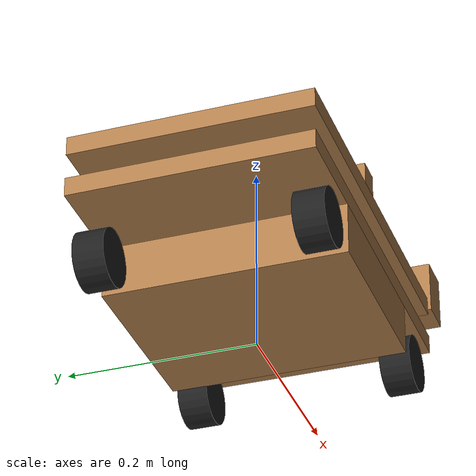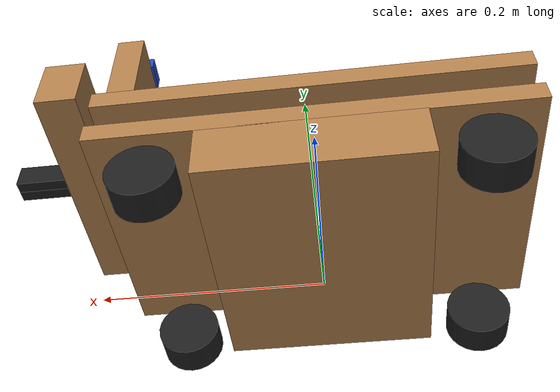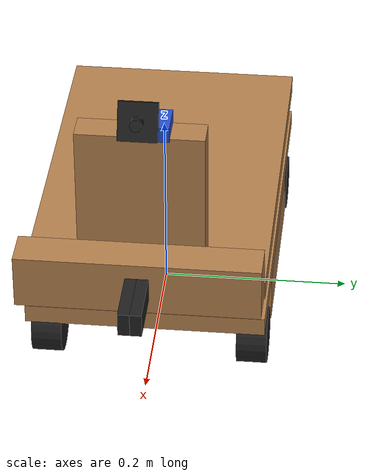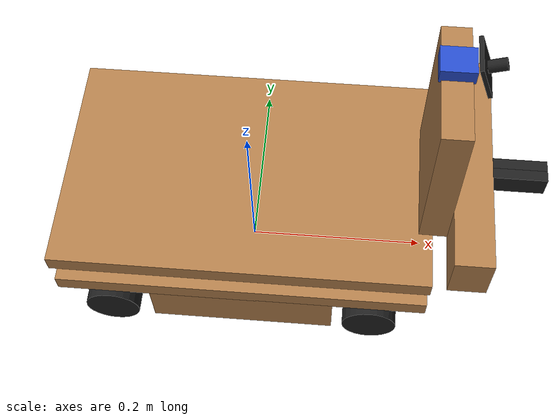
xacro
<?xml version="1.0"?>

<robot name="mobrob" xmlns:xacro="http://www.ros.org/wiki/xacro">

  <xacro:include filename="$(find myrobot_model)/urdf/mobrob_gpu.gazebo" />
  <xacro:include filename="$(find myrobot_model)/urdf/materials.urdf.xacro" />

  <link name="base_footprint"></link>

  <joint name="base_link_joint" type="fixed">
    <origin xyz="0 0 0.05" rpy="0 0 0" />
    <parent link="base_footprint"/>
    <child link="base_link" />
  </joint>

  <link name="base_link">
    <visual>
      <geometry>
        <box size="0.2 0.25 0.055"/>
      </geometry>
    </visual>
    <collision>
      <geometry>
        <box size="0.2 0.25 0.055"/>
      </geometry>
    </collision>
    <inertial>
      <mass value="1.1"/>
      <inertia
        ixx="0.006006" ixy="0.0" ixz="0.0"
        iyy="0.003944" iyz="0.0"
        izz="0.009396"/>
    </inertial>
  </link>

  <link name="upperbase_link">
    <visual>
      <origin xyz="0 0 0.0235" rpy="0 0 0" />
      <geometry>
        <box size="0.4 0.25 0.02"/>
      </geometry>
    </visual>
    <visual>
      <origin xyz="0 0 -0.0235" rpy="0 0 0" />
      <geometry>
        <box size="0.4 0.25 0.02"/>
      </geometry>
    </visual>
    <collision>
      <geometry>
        <box size="0.4 0.25 0.055"/>
      </geometry>
    </collision>
    <inertial>
      <mass value="2.6"/>
      <inertia
        ixx="0.01449" ixy="0.0" ixz="0.0"
        iyy="0.03558" iyz="0.0"
        izz="0.04821"/>
    </inertial>
  </link>
  <joint name="base_to_upperbase" type="fixed">
    <parent link="base_link"/>
    <child link="upperbase_link"/>
    <origin xyz="0 0 0.06"/>
  </joint>

  <link name="laser">
    <visual>
      <origin rpy="0 0 0" xyz="0 0 0"/>
      <geometry>
        <cylinder length="0.03" radius="0.04"/>
      </geometry>
      <material name="black"/>
    </visual>
    <collision>
      <origin rpy="0 0 0" xyz="0 0 0"/>
      <geometry>
        <cylinder length="0.03" radius="0.04"/>
      </geometry>
    </collision>
    <inertial>
      <mass value="0.2"/>
      <inertia
        ixx="0.0001021" ixy="0.0" ixz="0.0"
        iyy="0.0001021" iyz="0.0"
        izz="0.0001719"/>
    </inertial>
  </link>
  <joint name="base_to_laser" type="fixed">
    <parent link="base_link"/>
    <child link="laser"/>
    <origin rpy="0 0 ${-pi}" xyz="0.055 0 0.06"/>
  </joint>

  <link name="right_front_wheel">
    <visual>
      <origin rpy="1.57075 0 0" xyz="0 0 0"/>
      <geometry>
        <cylinder length="0.032" radius="0.03"/>
      </geometry>
      <material name="black"/>
    </visual>
    <collision>
      <origin rpy="1.57075 0 0" xyz="0 0 0"/>
      <geometry>
        <cylinder length="0.032" radius="0.03"/>
      </geometry>
    </collision>
    <inertial>
      <origin rpy="1.57075 0 0" xyz="0 0 0"/>
      <mass value="0.08"/>
      <inertia
        ixx="0.00002611" ixy="0.0" ixz="0.0"
        iyy="0.00003786" iyz="0.0"
        izz="0.00002611"/>
    </inertial>
  </link>
  <joint name="right_front_wheel_joint" type="continuous">
    <parent link="base_link"/>
    <child link="right_front_wheel"/>
    <origin rpy="0 0 0" xyz="0.142 0.109 -0.0175"/>
    <axis xyz="0 1 0"/>
  </joint>

  <link name="right_back_wheel">
    <visual>
      <origin rpy="1.57075 0 0" xyz="0 0 0"/>
      <geometry>
        <cylinder length="0.032" radius="0.03"/>
      </geometry>
      <material name="black"/>
    </visual>
    <collision>
      <origin rpy="1.57075 0 0" xyz="0 0 0"/>
      <geometry>
        <cylinder length="0.032" radius="0.03"/>
      </geometry>
    </collision>
    <inertial>
      <origin rpy="1.57075 0 0" xyz="0 0 0"/>
      <mass value="0.08"/>
      <inertia
        ixx="0.00002611" ixy="0.0" ixz="0.0"
        iyy="0.00003786" iyz="0.0"
        izz="0.00002611"/>
    </inertial>
  </link>
  <joint name="right_back_wheel_joint" type="continuous">
    <parent link="base_link"/>
    <child link="right_back_wheel"/>
    <origin rpy="0 0 0" xyz="-0.147 0.109 -0.0175"/>
    <axis xyz="0 1 0"/>
  </joint>

  <link name="left_front_wheel">
    <visual>
      <origin rpy="1.57075 0 0" xyz="0 0 0"/>
      <geometry>
        <cylinder length="0.032" radius="0.03"/>
      </geometry>
      <material name="black"/>
    </visual>
    <collision>
      <origin rpy="1.57075 0 0" xyz="0 0 0"/>
      <geometry>
        <cylinder length="0.032" radius="0.03"/>
      </geometry>
    </collision>
    <inertial>
      <origin rpy="1.57075 0 0" xyz="0 0 0"/>
      <mass value="0.08"/>
      <inertia
        ixx="0.00002611" ixy="0.0" ixz="0.0"
        iyy="0.00003786" iyz="0.0"
        izz="0.00002611"/>
    </inertial>
  </link>
  <joint name="left_front_wheel_joint" type="continuous">
    <parent link="base_link"/>
    <child link="left_front_wheel"/>
    <origin rpy="0 0 0" xyz="0.142 -0.109 -0.0175"/>
    <axis xyz="0 1 0"/>
  </joint>

  <link name="left_back_wheel">
    <visual>
      <origin rpy="1.57075 0 0" xyz="0 0 0"/>
      <geometry>
        <cylinder length="0.032" radius="0.03"/>
      </geometry>
      <material name="black"/>
    </visual>
    <collision>
      <origin rpy="1.57075 0 0" xyz="0 0 0"/>
      <geometry>
        <cylinder length="0.032" radius="0.03"/>
      </geometry>
    </collision>
    <inertial>
      <origin rpy="1.57075 0 0" xyz="0 0 0"/>
      <mass value="0.08"/>
      <inertia
        ixx="0.00002611" ixy="0.0" ixz="0.0"
        iyy="0.00003786" iyz="0.0"
        izz="0.00002611"/>
    </inertial>
  </link>
  <joint name="left_back_wheel_joint" type="continuous">
    <parent link="base_link"/>
    <child link="left_back_wheel"/>
    <origin rpy="0 0 0" xyz="-0.147 -0.109 -0.0175"/>
    <axis xyz="0 1 0"/>
  </joint>

  <link name="gripper_stand">
    <visual>
      <origin rpy="0 0 0" xyz="0 0 0.065"/>
      <geometry>
        <box size="0.03 0.13 0.18"/>
      </geometry>
    </visual>
    <collision>
      <origin rpy="0 0 0" xyz="0 0 0.065"/>
      <geometry>
        <box size="0.03 0.13 0.18"/>
      </geometry>
    </collision>
    <inertial>
      <mass value="0.028"/>
      <inertia
        ixx="0.0001154" ixy="0.0" ixz="0.0"
        iyy="0.00007792" iyz="0.0"
        izz="0.00004165"/>
    </inertial>
  </link>
  <joint name="base_to_gripper_stand_joint" type="fixed">
    <parent link="base_link"/>
    <child link="gripper_stand"/>
    <origin rpy="0 0 0" xyz="0.2 0 0.1175"/>
  </joint>

  <link name="gripper_base">
    <visual>
      <origin rpy="0 0 0" xyz="-0.04 0 0"/>
      <geometry>
        <box size="0.04 0.25 0.057"/>
      </geometry>
    </visual>
    <collision>
      <origin rpy="0 0 0" xyz="-0.04 0 0"/>
      <geometry>
        <box size="0.04 0.25 0.057"/>
      </geometry>
    </collision>
    <inertial>
      <mass value="0.0228"/>
      <inertia
        ixx="0.0001249" ixy="0.0" ixz="0.0"
        iyy="0.000009213" iyz="0.0"
        izz="0.0001218"/>
    </inertial>
  </link>
  <joint name="gripper_stand_to_gripper_joint" type="prismatic">
    <parent link="gripper_stand"/>
    <child link="gripper_base"/>
    <axis xyz="0 0 1"/>
    <limit effort="1000.0" lower="-0.12" upper="0" velocity="0.5"/>
    <origin rpy="0 0 0" xyz="0.075 0 0"/>
  </joint>

  <link name="right_finger">
    <visual>
      <origin rpy="0 0 0" xyz="0 -0.006  0"/>
      <geometry>
        <box size="0.08 0.012 0.025"/>
      </geometry>
    </visual>
    <collision>
      <origin rpy="0 0 0" xyz="0 -0.006  0"/>
      <geometry>
        <box size="0.08 0.012 0.025"/>
      </geometry>
    </collision>
    <inertial>
      <mass value="0.012"/>
      <inertia
        ixx="0.000000732" ixy="0.0" ixz="0.0"
        iyy="0.000002118" iyz="0.0"
        izz="0.00000166"/>
    </inertial>
  </link>
  <joint name="gripper_to_right_finger_joint" type="prismatic">
    <parent link="gripper_base"/>
    <child link="right_finger"/>
    <origin rpy="0 0 0" xyz="0 0 0"/>
    <axis xyz="0 1 0"/>
    <limit effort="1000.0" lower="-0.11" upper="0" velocity="0.5"/>
  </joint>

  <link name="left_finger">
    <visual>
      <origin rpy="0 0 0" xyz="0 0.006 0"/>
      <geometry>
        <box size="0.08 0.012 0.025"/>
      </geometry>
    </visual>
    <collision>
      <origin rpy="0 0 0" xyz="0 0.006 0"/>
      <geometry>
        <box size="0.08 0.012 0.025"/>
      </geometry>
    </collision>
    <inertial>
      <mass value="0.012"/>
      <inertia
        ixx="0.000000732" ixy="0.0" ixz="0.0"
        iyy="0.000002118" iyz="0.0"
        izz="0.00000166"/>
    </inertial>
  </link>
  <joint name="gripper_to_left_finger_joint" type="prismatic">
    <parent link="gripper_base"/>
    <child link="left_finger"/>
    <origin rpy="0 0 0" xyz="0 0 0"/>
    <axis xyz="0 1 0"/>
    <limit effort="1000.0" lower="0" upper="0.11" velocity="0.5"/>
  </joint>

  <link name="camera_servo">
    <visual>
      <origin rpy="0 0 0" xyz="-0.01 0.015 0.008"/>
      <geometry>
        <box size="0.035 0.03 0.016"/>
      </geometry>
    </visual>
    <collision>
      <origin rpy="0 0 0" xyz="-0.01 0.015 0.008"/>
      <geometry>
        <box size="0.03 0.035 0.016"/>
      </geometry>
    </collision>
    <inertial>
      <mass value="0.012"/>
      <inertia
        ixx="0.000000732" ixy="0.0" ixz="0.0"
        iyy="0.000002118" iyz="0.0"
        izz="0.00000166"/>
    </inertial>
  </link>
  <joint name="base_to_camera_servo_joint" type="fixed">
    <parent link="base_link"/>
    <child link="camera_servo"/>
    <origin rpy="0 0 0" xyz="0.21 0 0.27"/>
  </joint>

  <link name="camera_base">
    <visual>
      <origin rpy="0 0 0" xyz="0.02 0 -0.02"/>
      <geometry>
        <box size="0.004 0.04 0.04"/>
      </geometry>
    </visual>
    <collision>
      origin rpy="0 0 0" xyz="-0.01 0.015 0.01"/>
      <geometry>
        <box size="0.002 0.04 0.04"/>
      </geometry>
    </collision>
    <inertial>
      <mass value="0.012"/>
      <inertia
        ixx="0.000000732" ixy="0.0" ixz="0.0"
        iyy="0.000002118" iyz="0.0"
        izz="0.00000166"/>
    </inertial>
  </link>
  <joint name="camera_servo_to_camera_base_joint" type="revolute">
    <parent link="camera_servo"/>
    <child link="camera_base"/>
    <origin rpy="0 1.57075 3.14159" xyz="0 0 0"/>
    <axis xyz="0 1 0"/>
    <limit effort="1000.0" lower="0.69" upper="3.14159" velocity="0.5"/>
  </joint>

  <link name="camera_center">
    <visual>
      <origin rpy="0 1.57075 0" xyz="0.01 0 0"/>
      <geometry>
        <cylinder length="0.02" radius="0.006"/>
      </geometry>
    </visual>
    <collision>
      <origin rpy="0 0 0" xyz="-0.01 0 0"/>
      <geometry>
        <cylinder length="0.02" radius="0.006"/>
      </geometry>
    </collision>
    <inertial>
      <mass value="0.012"/>
      <inertia
        ixx="0.000000732" ixy="0.0" ixz="0.0"
        iyy="0.000002118" iyz="0.0"
        izz="0.00000166"/>
    </inertial>
  </link>
  <joint name="camera_base_to_camera_center_joint" type="fixed">
    <parent link="camera_base"/>
    <child link="camera_center"/>
    <origin rpy="3.14159 0 0" xyz="0.02 0 -0.02"/>
  </joint>

</robot>
